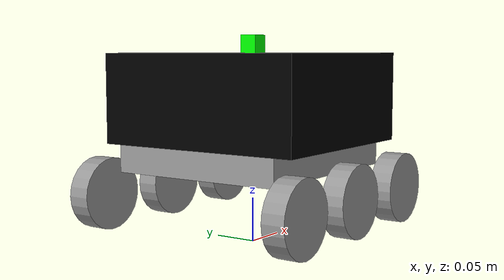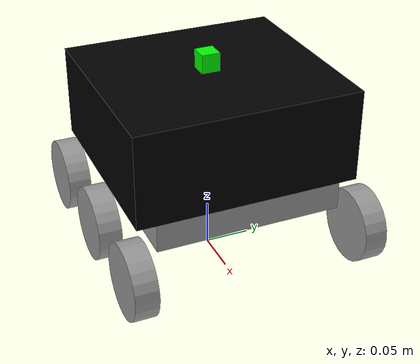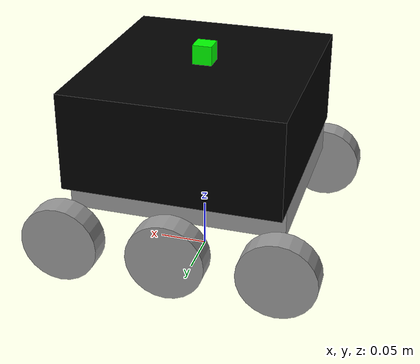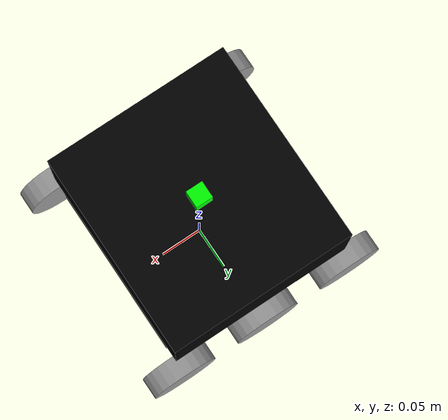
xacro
<?xml version="1.0"?>
<robot name="tracked_robot" xmlns:xacro="http://www.ros.org/wiki/xacro">
  <xacro:include filename="$(find robot_description)/urdf/inertial_macros.xacro"/>
  <xacro:include filename="$(find robot_description)/urdf/common_properties.xacro"/>

  <xacro:arg name="laser_visual" default="true"/>

  <xacro:property name="ROBOT_LENGTH"     value="0.30" />
  <xacro:property name="ROBOT_WIDTH"      value="0.30" />
  <xacro:property name="ROBOT_HEIGHT"     value="0.28" />

  <xacro:property name="TRACK_LENGTH"     value="0.30" />
  <xacro:property name="TRACK_WIDTH"      value="0.05" />
  <xacro:property name="TRACK_HEIGHT"     value="0.15" />
  <xacro:property name="TRACK_SEPARATION" value="0.23" />

  <xacro:property name="WHEEL_RADIUS"     value="0.04" />
  <xacro:property name="WHEEL_WIDTH"      value="0.025" />
  <xacro:property name="WHEEL_MASS"       value="0.1" />

  <xacro:property name="BASE_LENGTH"      value="0.22" />
  <xacro:property name="BASE_WIDTH"       value="0.20" />
  <xacro:property name="BASE_HEIGHT"      value="0.03" />
  <xacro:property name="BASE_MASS"        value="1" />

  <link name="base_footprint"/>

  <link name="base_link">
    <visual>
      <origin xyz="0 0 ${2.5*WHEEL_RADIUS}" />
      <geometry>
        <box size="${BASE_LENGTH} ${BASE_WIDTH} ${BASE_HEIGHT}"/>
      </geometry>
      <material name="grey"/>
    </visual>
    <collision>
      <origin xyz="0 0 ${2.5*WHEEL_RADIUS}" rpy="0 0 0"/>
      <geometry>
        <box size="${BASE_LENGTH} ${BASE_WIDTH} ${BASE_HEIGHT}"/>
      </geometry>
    </collision>
    <xacro:solid_cuboid_inertial
      length="${BASE_LENGTH}" width="${BASE_WIDTH}" height="${BASE_HEIGHT}" mass="${BASE_MASS}">
      <origin xyz="0 0 ${2.5*WHEEL_RADIUS}" rpy="0 0 0"/>
    </xacro:solid_cuboid_inertial>
  </link>
  <joint name="base_joint" type="fixed">
    <parent link="base_footprint"/>
    <child link="base_link"/>
    <origin xyz="0 0 0" rpy="0 0 0"/>
  </joint>
  <gazebo reference="base_link">
    <material>Gazebo/Grey</material>
    <turnGravityOff>false</turnGravityOff>
    <selfCollide>false</selfCollide>
  </gazebo>

  <link name="back_left_wheel">
    <visual>
      <origin xyz="0 0 0"/>
      <geometry>
        <cylinder radius="${WHEEL_RADIUS}" length="${WHEEL_WIDTH}" />
      </geometry>
      <material name="grey"/>
    </visual>
    <collision>
      <origin xyz="0 0 0"/>
      <geometry>
        <cylinder radius="${WHEEL_RADIUS}" length="${WHEEL_WIDTH}" />
      </geometry>
    </collision>
    <xacro:solid_cylinder_inertial r="${WHEEL_RADIUS}" h="${WHEEL_WIDTH}" mass="${WHEEL_MASS}" >
      <origin xyz="0 0 0" rpy="0 0 0" />
    </xacro:solid_cylinder_inertial>
  </link>
  <joint name="back_left_wheel_connect" type="continuous">
    <parent link="base_link"/>
    <child link="back_left_wheel"/>
    <origin xyz="${WHEEL_RADIUS - ROBOT_LENGTH/2} 0.125 0.06" rpy="-1.57 0 0"/>
    <axis xyz="0 0 1"/>
  </joint>
  <gazebo reference="back_left_wheel">
    <material>Gazebo/Grey</material>
    <turnGravityOff>false</turnGravityOff>
    <selfCollide>false</selfCollide>
  </gazebo>

  <link name="back_right_wheel">
    <visual>
      <origin xyz="0 0 0"/>
      <geometry>
        <cylinder radius="${WHEEL_RADIUS}" length="${WHEEL_WIDTH}" />
      </geometry>
      <material name="grey"/>
    </visual>
    <collision>
      <origin xyz="0 0 0"/>
      <geometry>
        <cylinder radius="${WHEEL_RADIUS}" length="${WHEEL_WIDTH}" />
      </geometry>
    </collision>
    <xacro:solid_cylinder_inertial r="${WHEEL_RADIUS}" h="${WHEEL_WIDTH}" mass="${WHEEL_MASS}" >
      <origin xyz="0 0 0" rpy="0 0 0" />
    </xacro:solid_cylinder_inertial>
  </link>
  <joint name="back_right_wheel_connect" type="continuous">
    <parent link="base_link"/>
    <child link="back_right_wheel"/>
    <origin xyz="${WHEEL_RADIUS - ROBOT_LENGTH/2} -0.125 0.06" rpy="-1.57 0 0"/>
    <axis xyz="0 0 1"/>
  </joint>
  <gazebo reference="back_right_wheel">
    <material>Gazebo/Grey</material>
    <turnGravityOff>false</turnGravityOff>
    <selfCollide>false</selfCollide>
  </gazebo>

  <link name="mid_left_wheel">
    <visual>
      <origin xyz="0 0 0"/>
      <geometry>
        <cylinder radius="${WHEEL_RADIUS}" length="${WHEEL_WIDTH}" />
      </geometry>
      <material name="grey"/>
    </visual>
    <collision>
      <origin xyz="0 0 0"/>
      <geometry>
        <cylinder radius="${WHEEL_RADIUS+0.0001}" length="${WHEEL_WIDTH}" />
      </geometry>
    </collision>
    <xacro:solid_cylinder_inertial r="${WHEEL_RADIUS}" h="${WHEEL_WIDTH}" mass="${WHEEL_MASS}" >
      <origin xyz="0 0 0" rpy="0 0 0" />
    </xacro:solid_cylinder_inertial>
  </link>
  <joint name="mid_left_wheel_connect" type="continuous">
    <parent link="base_link"/>
    <child link="mid_left_wheel"/>
    <origin xyz="0 0.125 0.06" rpy="-1.57 0 0"/>
    <axis xyz="0 0 1"/>
  </joint>
  <gazebo reference="mid_left_wheel">
    <material>Gazebo/Grey</material>
    <turnGravityOff>false</turnGravityOff>
    <selfCollide>false</selfCollide>
  </gazebo>

  <link name="mid_right_wheel">
    <visual>
      <origin xyz="0 0 0"/>
      <geometry>
        <cylinder radius="${WHEEL_RADIUS}" length="${WHEEL_WIDTH}" />
      </geometry>
      <material name="grey"/>
    </visual>
    <collision>
      <origin xyz="0 0 0"/>
      <geometry>
        <cylinder radius="${WHEEL_RADIUS+0.0001}" length="${WHEEL_WIDTH}" />
      </geometry>
    </collision>
    <xacro:solid_cylinder_inertial r="${WHEEL_RADIUS}" h="${WHEEL_WIDTH}" mass="${WHEEL_MASS}" >
      <origin xyz="0 0 0" rpy="0 0 0" />
    </xacro:solid_cylinder_inertial>
  </link>
  <joint name="mid_right_wheel_connect" type="continuous">
    <parent link="base_link"/>
    <child link="mid_right_wheel"/>
    <origin xyz="0 -0.125 0.06" rpy="-1.57 0 0"/>
    <axis xyz="0 0 1"/>
  </joint>
  <gazebo reference="mid_right_wheel">
    <material>Gazebo/Grey</material>
    <turnGravityOff>false</turnGravityOff>
    <selfCollide>false</selfCollide>
  </gazebo>

  <link name="front_left_wheel">
    <visual>
      <origin xyz="0 0 0"/>
      <geometry>
        <cylinder radius="${WHEEL_RADIUS}" length="${WHEEL_WIDTH}" />
      </geometry>
      <material name="grey"/>
    </visual>
    <collision>
      <origin xyz="0 0 0"/>
      <geometry>
        <cylinder radius="${WHEEL_RADIUS}" length="${WHEEL_WIDTH}" />
      </geometry>
    </collision>
    <xacro:solid_cylinder_inertial r="${WHEEL_RADIUS}" h="${WHEEL_WIDTH}" mass="${WHEEL_MASS}" >
      <origin xyz="0 0 0" rpy="0 0 0" />
    </xacro:solid_cylinder_inertial>
  </link>
  <joint name="front_left_wheel_connect" type="continuous">
    <parent link="base_link"/>
    <child link="front_left_wheel"/>
    <origin xyz="${ROBOT_LENGTH/2 - WHEEL_RADIUS} 0.125 0.06" rpy="-1.57 0 0"/>
    <axis xyz="0 0 1"/>
  </joint>
  <gazebo reference="front_left_wheel">
    <material>Gazebo/Grey</material>
    <turnGravityOff>false</turnGravityOff>
    <selfCollide>false</selfCollide>
  </gazebo>

  <link name="front_right_wheel">
    <visual>
      <origin xyz="0 0 0"/>
      <geometry>
        <cylinder radius="${WHEEL_RADIUS}" length="${WHEEL_WIDTH}" />
      </geometry>
      <material name="grey"/>
    </visual>
    <collision>
      <origin xyz="0 0 0"/>
      <geometry>
        <cylinder radius="${WHEEL_RADIUS}" length="${WHEEL_WIDTH}" />
      </geometry>
    </collision>
    <xacro:solid_cylinder_inertial r="${WHEEL_RADIUS}" h="${WHEEL_WIDTH}" mass="${WHEEL_MASS}" >
      <origin xyz="0 0 0" rpy="0 0 0" />
    </xacro:solid_cylinder_inertial>
  </link>
  <joint name="front_right_wheel_connect" type="continuous">
    <parent link="base_link"/>
    <child link="front_right_wheel"/>
    <origin xyz="${ROBOT_LENGTH/2 - WHEEL_RADIUS} -0.125 0.06" rpy="-1.57 0 0"/>
    <axis xyz="0 0 1"/>
  </joint>
  <gazebo reference="front_right_wheel">
    <material>Gazebo/Grey</material>
    <turnGravityOff>false</turnGravityOff>
    <selfCollide>false</selfCollide>
  </gazebo>

  <link name="head">
    <visual>
      <origin xyz="0 0 0" />
      <geometry>
        <box size="${BASE_LENGTH} 0.24 0.10" />
      </geometry>
      <material name="black">
        <color rgba="0 0 0 1"/>
      </material>
    </visual>
    <collision>
      <geometry>
        <box size="${BASE_LENGTH} 0.24 0.10"/>
      </geometry>
    </collision>
    <xacro:solid_cuboid_inertial
      length="${BASE_LENGTH}" width="0.24" height="0.10" mass="0.01">
      <origin xyz="0 0 0" rpy="0 0 0"/>
    </xacro:solid_cuboid_inertial>
  </link>
  <joint name="head_connect" type="fixed">
    <origin xyz="0 0 0.165" />
    <parent link="base_link"/>
    <child link="head"/>
  </joint>
  <gazebo reference="head">
    <material>Gazebo/Black</material>
    <turnGravityOff>false</turnGravityOff>
    <selfCollide>false</selfCollide>
  </gazebo>

  <link name="base_scan">
    <visual>
      <origin xyz="0 0 0"/>
      <geometry>
        <box size="0.02 0.02 0.02" />
      </geometry>
      <material name="blue">
        <color rgba="0 1 0 1"/>
      </material>
    </visual>
    <xacro:solid_cuboid_inertial
      length="0.02" width="0.02" height="0.02" mass="0.1">
      <origin xyz="0 0 0" rpy="0 0 0"/>
    </xacro:solid_cuboid_inertial>
    <collision>
      <geometry>
        <box size="0.02 0.02 0.02"/>
      </geometry>
    </collision>
  </link>
  <joint name="base_scan_connect" type="fixed">
    <origin xyz="0 0 0.06" />
    <parent link="head"/>
    <child link="base_scan"/>
  </joint>
  <gazebo reference="base_scan">
    <material>Gazebo/White</material>
    <turnGravityOff>false</turnGravityOff>
    <selfCollide>false</selfCollide>
  </gazebo>

  <gazebo>
    <plugin name="tracked_robot_controller" filename="libgazebo_ros_diff_drive.so">
      <commandTopic>cmd_vel</commandTopic>
      <odometryTopic>odom</odometryTopic>
      <odometryFrame>odom</odometryFrame>
      <odometrySource>world</odometrySource>
      <publishOdomTF>true</publishOdomTF>
      <robotBaseFrame>base_footprint</robotBaseFrame>
      <publishWheelTF>false</publishWheelTF>
      <publishTf>true</publishTf>
      <publishWheelJointState>true</publishWheelJointState>
      <legacyMode>true</legacyMode>
      <updateRate>30</updateRate>
      <leftJoint>mid_left_wheel_connect</leftJoint>
      <rightJoint>mid_right_wheel_connect</rightJoint>
      <wheelSeparation>0.23</wheelSeparation>
      <wheelDiameter>0.08</wheelDiameter>
      <wheelAcceleration>1</wheelAcceleration>
      <wheelTorque>1</wheelTorque>
      <rosDebugLevel>na</rosDebugLevel>
    </plugin>
  </gazebo>

  <gazebo reference="base_scan">
    <material>Gazebo/FlatBlack</material>
    <sensor type="ray" name="lds_lfcd_sensor">
      <pose>0 0 0 0 0 0</pose>
      <visualize>$(arg laser_visual)</visualize>
      <update_rate>5</update_rate>
      <ray>
        <scan>
          <horizontal>
            <samples>360</samples>
            <resolution>1</resolution>
            <min_angle>0.0</min_angle>
            <max_angle>6.28319</max_angle>
          </horizontal>
        </scan>
        <range>
          <min>0.120</min>
          <max>7</max>
          <resolution>0.015</resolution>
        </range>
        <noise>
          <type>gaussian</type>
          <mean>0.0</mean>
          <stddev>0.01</stddev>
        </noise>
      </ray>
      <plugin name="gazebo_ros_lds_lfcd_controller" filename="libgazebo_ros_laser.so">
        <topicName>scan</topicName>
        <frameName>base_scan</frameName>
      </plugin>
    </sensor>
  </gazebo>

</robot>

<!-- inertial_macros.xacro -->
<robot name="xacro_properties" xmlns:xacro="http://ros.org/wiki/xacro">
  <xacro:macro name="null_inertial">
    <inertial>
      <mass value="0.001"/>
      <inertia ixx="0.001" ixy="0" ixz="0"
               iyy="0.001" iyz="0"
               izz="0.001"/>
    </inertial>
  </xacro:macro>

  <xacro:macro name="solid_cuboid_inertial"
               params="width length height mass *origin">
    <inertial>
      <xacro:insert_block name="origin"/>
      <mass value="${mass}"/>
      <inertia ixx="${mass * (width * width + height * height) / 12}"
               ixy="0" ixz="0"
               iyy="${mass * (length * length + height * height) / 12}"
               iyz="0"
               izz="${mass * (width * width + length * length) / 12}"/>
    </inertial>
  </xacro:macro>

  <xacro:macro name="solid_cylinder_inertial"
               params="r h mass *origin">
    <inertial>
      <xacro:insert_block name="origin"/>
      <mass value="${mass}"/>
      <inertia ixx="${mass / 12 * (3 * r * r + h * h)}" ixy="0.0" ixz="0.0"
               iyy="${mass / 12 * (3 * r * r + h * h)}" iyz="0.0"
               izz="${mass / 2 * r * r}" />
    </inertial>
  </xacro:macro>
</robot>
